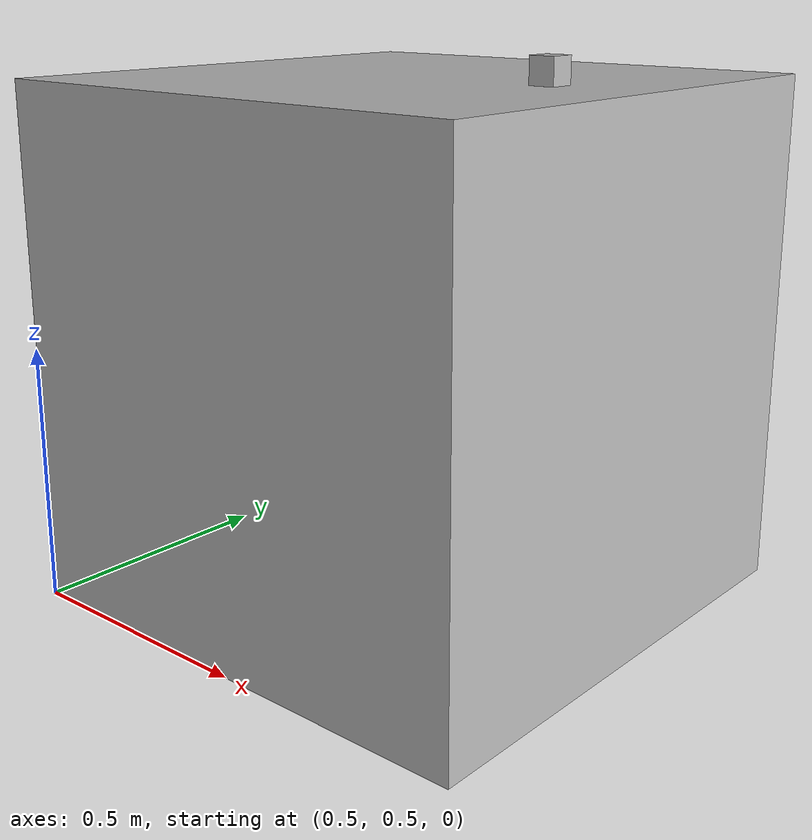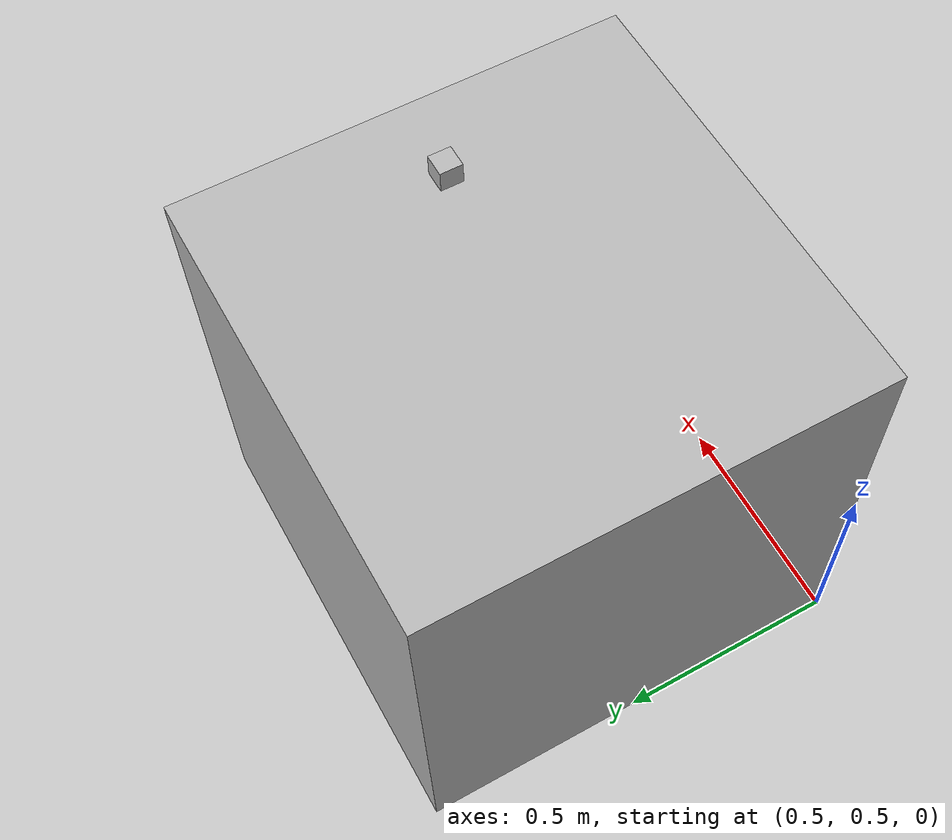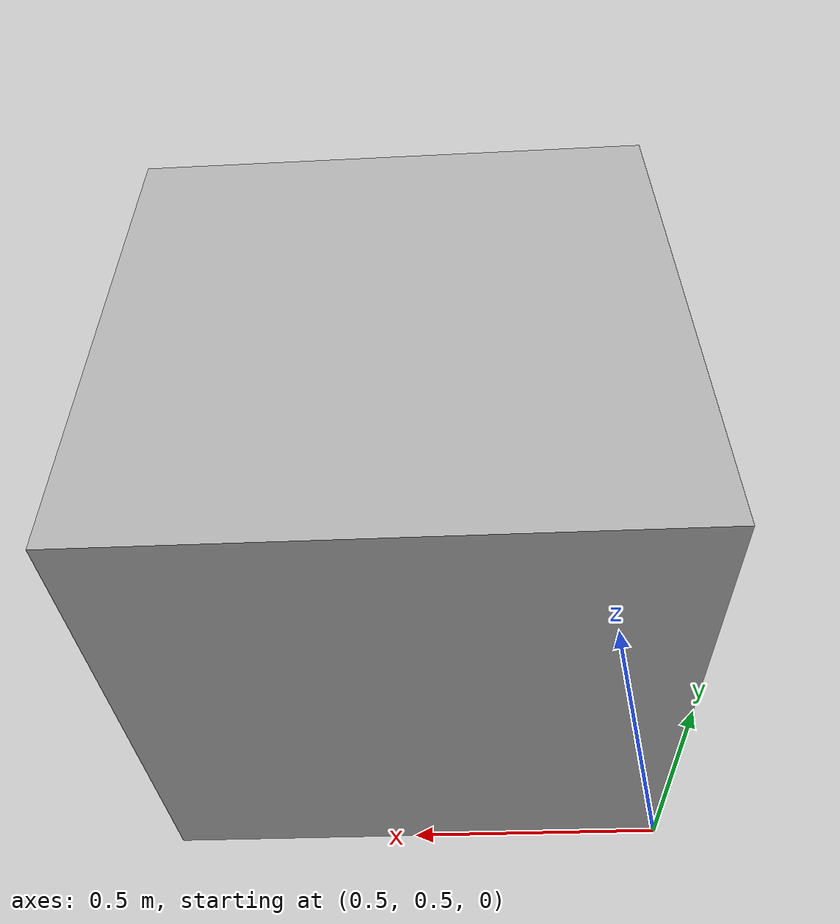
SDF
<?xml version="1.0" ?>
<sdf version="1.5">

  <!-- Box -->
  <model name="box">
    <pose>1 1 0.5 0 0 0</pose>
    <self_collide>true</self_collide>
    <link name="box_root">
      <pose>0 0 0 0 0 0</pose>
      <collision name="box_surface">
	<geometry>
          <box>
            <size>1.0 1.0 1.0</size>
          </box>
	</geometry>
      </collision>
      <visual name="box_visual">
	<geometry>
          <box>
            <size>1.0 1.0 1.0</size>
          </box>
	</geometry>
      </visual>
    </link>

    <!-- nested model -->
    <model name="nested_box">
      <!-- pose relative to the parent model -->
      <pose>0.3 0 0.525 0 0 0</pose>
      <self_collide>true</self_collide>
      <link name="nested_box_root">
	<pose>0 0 0 0 0 0</pose>
	<collision name="nested_box_surface">
	  <geometry>
            <box>
              <size>0.05 0.05 0.05</size>
            </box>
	  </geometry>
	</collision>
	<visual name="nested_box_visual">
	  <geometry>
            <box>
              <size>0.05 0.05 0.05</size>
            </box>
	  </geometry>
	</visual>
      </link>

      <!-- Model Pose Publisher plugin inside the nested model-->
      <plugin name='pose publisher' filename='libgazebo_modelPosePublisher.so'>
      </plugin>

    </model>

  </model>
</sdf>
